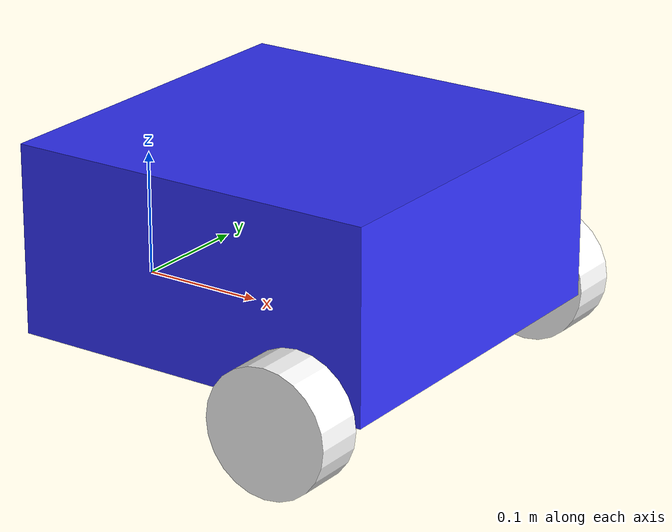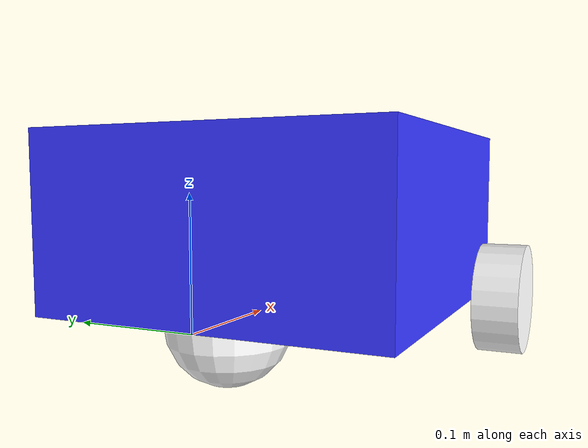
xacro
<?xml version="1.0"?>
<robot xmlns:xacro="http://www.ros.org/wiki/xacro">

    <xacro:include filename="inertial_macros.xacro"/>

    <material name="white">
        <color rgba="1 1 1 1"/>
    </material>

    <material name="orange">
        <color rgba="1 0.3 0.1 1"/>
    </material>

    <material name="blue">
        <color rgba="0.2 0.2 1 1"/>
    </material>

    <material name="black">
        <color rgba="0 0 0 1"/>
    </material>

    <material name="red">
        <color rgba="1 0 0 1"/>
    </material>

    <!-- BASE LINK/-->

    <link name="base_link">

    </link>

    <link name="base_footprint"></link>

    <joint name="base_joint" type="fixed">
        <parent link="base_footprint"/>
        <child link="base_link"/>
        <origin xyz="0 0 0"/>
    </joint>

    <!--CHASSIS LINK/-->

    <joint name="chassis_joint" type="fixed">
        <parent link="base_link"/>
        <child link="chassis"/>
        <origin xyz="0 0 0"/>
    </joint>

    <link name="chassis">
        <inertial>
            <mass value="0.5"/>
            <origin rpy="0 0 0" xyz="0.15 0 0.075"/>
            <inertia ixx="0.00395416666667" ixy="0" ixz="0" iyy="0.0106208333333" iyz="0" izz="0.0106208333333"/>
        </inertial>
        <visual>
            <origin xyz="0.15 0 0.075"/>
            <geometry>
                <box size="0.3 0.3 0.15"/>
            </geometry>
            <material name="blue"/>
        </visual>
        <collision>
            <origin xyz="0.15 0 0.075"/>
            <geometry>
                <box size="0.3 0.3 0.15"/>
            </geometry>
        </collision>
    </link>

    <gazebo reference = "chassis">
        <material>Gazebo/Blue</material>
    </gazebo>

    <!-- LEFT WHEEL LINK -->

    <joint name="left_wheel_joint" type="continuous">
            <parent link="chassis"/>
            <child link="left_wheel"/>
            <origin xyz="0.25 0.175 0" rpy="-${pi/2} 0 0"/>
            <axis xyz="0 0 1"/>
    </joint>

    <link name="left_wheel">
        <visual>
            <geometry>
                <cylinder radius="0.05" length="0.04"/>
            </geometry>
            <material name="white"/>
        </visual>
        <collision>
            <geometry>
                <cylinder radius="0.05" length="0.04"/>
            </geometry>
        </collision>
        <inertial>
            <mass value="0.2"/>
            <origin rpy="0 0 0" xyz="0 0 0"/>
            <inertia ixx="0.000151667" ixy="0" ixz="0" iyy="0.000151667" iyz="0" izz="0.00025"/>
        </inertial>
    </link>

    <gazebo reference = "left_wheel">
        <material>Gazebo/White</material>
    </gazebo>

 <!-- RIGHT WHEEL LINK -->

    <joint name="right_wheel_joint" type="continuous">
            <parent link="chassis"/>
            <child link="right_wheel"/>
            <origin xyz="0.25 -0.175 0" rpy="${pi/2} 0 0"/>
            <axis xyz="0 0 -1"/>
    </joint>

    <link name="right_wheel">
        <visual>
            <origin xyz="0 0 0" rpy="0 0 0"/>
            <geometry>
                <cylinder radius="0.05" length="0.04"/>
            </geometry>
            <material name="white"/>
        </visual>
        <collision>
            <geometry>
                <cylinder radius="0.05" length="0.04"/>
            </geometry>
        </collision>
        <inertial>
            <mass value="0.2"/>
            <origin rpy="0 0 0" xyz="0 0 0"/>
            <inertia ixx="0.000151667" ixy="0" ixz="0" iyy="0.000151667" iyz="0" izz="0.00025"/>
        </inertial>
    </link>

    <gazebo reference = "right_wheel">
        <material>Gazebo/White</material>
    </gazebo>

 <!-- CASTER WHEEL LINK-->

    <joint name="caster_wheel_joint" type="fixed">
        <parent link="chassis"/>
        <child link="caster_wheel"/>
        <origin xyz="0.05 0 0"/>
    </joint>

    <link name="caster_wheel">
        <visual>
            <geometry>
                <sphere radius="0.05"/>
            </geometry>
            <material name="white"/>
        </visual>
        <collision>
            <geometry>
                <sphere radius="0.05"/>
            </geometry>
        </collision>
        <inertial>
            <mass value="0.2"/>
            <origin rpy="0 0 0" xyz="0 0 0"/>
            <inertia ixx="0.0003" ixy="0" ixz="0" iyy="0.0003" iyz="0" izz="0.0003"/>
        </inertial>
    </link>

    <gazebo reference = "caster_wheel">
        <material>Gazebo/White</material>
        <mu1 value = "0.001"/>
        <mu2 value = "0.001"/>
    </gazebo>

</robot>
